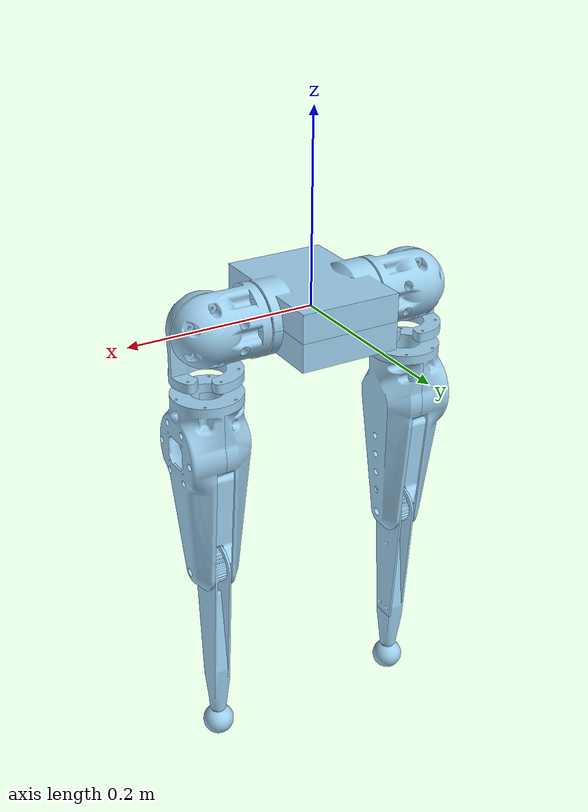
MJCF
<?xml version="1.0" ?>
<!-- Generated using onshape-to-robot -->
<!-- Onshape https://cad.onshape.com/documents/360c6fe247050cb2acb89595/w/0ec76884927e0d2c965064d4/e/8ad038c71909de84c50c460e -->
<mujoco model="robot">
  <compiler angle="radian" meshdir="assets" autolimits="true"/>
  <default>
    <default class="robot">
      <joint frictionloss="0.1" armature="0.005"/>
      <position kp="50" dampratio="1"/>
      <default class="visual">
        <geom type="mesh" contype="0" conaffinity="0" group="2"/>
      </default>
      <default class="collision">
        <geom group="3"/>
      </default>
    </default>
  </default>
  <worldbody>
    <!-- Link pelvis -->
    <body name="pelvis" pos="0 0 0" quat="1 0 0 0" childclass="robot">
      <freejoint name="root"/>
      <inertial pos="0.000216195 -0.000649295 -0.000502195" mass="0.211284" fullinertia="0.000625526 0.000430078 0.000805235 -5.48372e-11 -2.17675e-10 -3.73841e-10"/>
      <!-- Part pelvis_lower -->
      <geom type="mesh" class="visual" pos="0.000216158 -0.000649359 -0.000502235" quat="1 0 0 0" mesh="pelvis_lower" material="pelvis_lower_material"/>
      <geom type="mesh" class="collision" pos="0.000216158 -0.000649359 -0.000502235" quat="1 0 0 0" mesh="pelvis_lower" material="pelvis_lower_material"/>
      <!-- Part pelvis_upper -->
      <geom type="mesh" class="visual" pos="0.000216158 -0.000649359 -0.000502235" quat="1 0 0 0" mesh="pelvis_upper" material="pelvis_upper_material"/>
      <geom type="mesh" class="collision" pos="0.000216158 -0.000649359 -0.000502235" quat="1 0 0 0" mesh="pelvis_upper" material="pelvis_upper_material"/>
      <!-- Link l_shoulder_1 -->
      <body name="l_shoulder_1" pos="0.0637162 -0.000649359 -0.000502235" quat="0.5 -0.5 -0.5 0.5">
        <!-- Joint from pelvis to l_shoulder_1 -->
        <joint axis="0 0 1" name="l_hip_fe" type="hinge" range="-3.141592653589793 3.141592653589793"/>
        <inertial pos="0.0150409 0.000418622 -0.0361911" mass="0.1328" fullinertia="0.000134901 0.00011261 8.20386e-05 2.24108e-06 1.70356e-05 -1.62268e-06"/>
        <!-- Part shoulder -->
        <geom type="mesh" class="visual" pos="2.08926e-16 1.02229e-15 -0.002" quat="0.5 0.5 -0.5 -0.5" mesh="shoulder" material="shoulder_material"/>
        <geom type="mesh" class="collision" pos="2.08926e-16 1.02229e-15 -0.002" quat="0.5 0.5 -0.5 -0.5" mesh="shoulder" material="shoulder_material"/>
        <!-- Link l_shoulder_2 -->
        <body name="l_shoulder_2" pos="-0.002 1.35536e-15 -0.0545" quat="6.00642e-16 0.707107 -1.66533e-15 -0.707107">
          <!-- Joint from l_shoulder_1 to l_shoulder_2 -->
          <joint axis="0 0 1" name="l_hip_aa" type="hinge"/>
          <inertial pos="-0.000418622 -0.0183089 0.0150409" mass="0.1328" fullinertia="0.00011261 8.20386e-05 0.000134901 -1.62268e-06 -2.24108e-06 -1.70356e-05"/>
          <!-- Part shoulder_2 -->
          <geom type="mesh" class="visual" pos="0 -0.0525 0" quat="0 1 0 0" mesh="shoulder" material="shoulder_material"/>
          <geom type="mesh" class="collision" pos="0 -0.0525 0" quat="0 1 0 0" mesh="shoulder" material="shoulder_material"/>
          <!-- Link l_thigh -->
          <body name="l_thigh" pos="9.71445e-17 -0.0675 3.60389e-15" quat="0.707107 -0.707107 2.66454e-15 2.68036e-15">
            <!-- Joint from l_shoulder_2 to l_thigh -->
            <joint axis="0 0 1" name="l_hip_ie" type="hinge"/>
            <inertial pos="0.00177203 1.75905e-06 -0.0920004" mass="0.308571" fullinertia="0.00173378 0.0017582 0.000264562 -1.32373e-08 6.20201e-06 -2.38022e-08"/>
            <!-- Part thigh -->
            <geom type="mesh" class="visual" pos="0 -2.1684e-18 -0.01" quat="1 0 -1.11022e-16 1.7481e-16" mesh="thigh" material="thigh_material"/>
            <geom type="mesh" class="collision" pos="0 -2.1684e-18 -0.01" quat="1 0 -1.11022e-16 1.7481e-16" mesh="thigh" material="thigh_material"/>
            <!-- Part thigh_cover -->
            <geom type="mesh" class="visual" pos="-4.16334e-16 5.30392e-16 -0.1225" quat="0.5 0.5 -0.5 -0.5" mesh="thigh_cover" material="thigh_cover_material"/>
            <geom type="mesh" class="collision" pos="-4.16334e-16 5.30392e-16 -0.1225" quat="0.5 0.5 -0.5 -0.5" mesh="thigh_cover" material="thigh_cover_material"/>
            <!-- Link l_shin -->
            <body name="l_shin" pos="0.0095 3.47595e-15 -0.21" quat="0.5 -0.5 0.5 -0.5">
              <!-- Joint from l_thigh to l_shin -->
              <joint axis="0 0 1" name="l_knee" type="hinge" range="-2.7576202181510014 2.7576202181510796"/>
              <inertial pos="1.04505e-16 0.111142 -0.009472" mass="0.14309" fullinertia="0.000865132 1.70838e-05 0.000870179 4.42897e-19 9.92461e-12 2.32039e-07"/>
              <!-- Part shin_cover -->
              <geom type="mesh" class="visual" pos="-2.60209e-18 -2.77556e-16 -0.0165" quat="2.74654e-16 -1 -7.63278e-16 -1.33497e-15" mesh="shin_cover" material="shin_cover_material"/>
              <geom type="mesh" class="collision" pos="-2.60209e-18 -2.77556e-16 -0.0165" quat="2.74654e-16 -1 -7.63278e-16 -1.33497e-15" mesh="shin_cover" material="shin_cover_material"/>
              <!-- Part shin -->
              <geom type="mesh" class="visual" pos="0 5.55112e-17 0" quat="0 1 0 0" mesh="shin" material="shin_material"/>
              <geom type="mesh" class="collision" pos="0 5.55112e-17 0" quat="0 1 0 0" mesh="shin" material="shin_material"/>
              <!-- Part foot -->
              <geom type="mesh" class="visual" pos="0 0.218564 -0.0095" quat="0.5 0.5 -0.5 0.5" mesh="foot" material="foot_material"/>
              <geom type="mesh" class="collision" pos="0 0.218564 -0.0095" quat="0.5 0.5 -0.5 0.5" mesh="foot" material="foot_material"/>
              <!-- Frame l_foot -->
              <site group="3" name="l_foot" pos="0 0.218564 -0.0095" quat="0.5 0.5 -0.5 0.5"/>
            </body>
          </body>
        </body>
      </body>
      <!-- Link r_shoulder_1 -->
      <body name="r_shoulder_1" pos="-0.0632838 -0.000649359 -0.000502235" quat="0.5 -0.5 -0.5 0.5">
        <!-- Joint from pelvis to r_shoulder_1 -->
        <joint axis="0 0 1" name="r_hip_fe" type="hinge" range="-3.141592653589793 3.141592653589793"/>
        <inertial pos="0.0150409 -0.000418622 0.0361911" mass="0.1328" fullinertia="0.000134901 0.00011261 8.20386e-05 -2.24108e-06 -1.70356e-05 -1.62268e-06"/>
        <!-- Part shoulder_3 -->
        <geom type="mesh" class="visual" pos="1.19262e-18 -1.84314e-18 0.002" quat="0.5 -0.5 -0.5 0.5" mesh="shoulder" material="shoulder_material"/>
        <geom type="mesh" class="collision" pos="1.19262e-18 -1.84314e-18 0.002" quat="0.5 -0.5 -0.5 0.5" mesh="shoulder" material="shoulder_material"/>
        <!-- Link r_shoulder_2 -->
        <body name="r_shoulder_2" pos="-0.002 5.08491e-17 0.0545" quat="0.707107 4.56209e-16 0.707107 -2.47125e-15">
          <!-- Joint from r_shoulder_1 to r_shoulder_2 -->
          <joint axis="0 0 1" name="r_hip_aa" type="hinge"/>
          <inertial pos="-0.000418622 0.0183089 -0.0150409" mass="0.1328" fullinertia="0.00011261 8.20386e-05 0.000134901 1.62268e-06 2.24108e-06 -1.70356e-05"/>
          <!-- Part shoulder_4 -->
          <geom type="mesh" class="visual" pos="-4.16334e-17 0.0525 0" quat="1 0 1.45717e-16 2.34272e-16" mesh="shoulder" material="shoulder_material"/>
          <geom type="mesh" class="collision" pos="-4.16334e-17 0.0525 0" quat="1 0 1.45717e-16 2.34272e-16" mesh="shoulder" material="shoulder_material"/>
          <!-- Link r_thigh -->
          <body name="r_thigh" pos="-4.16334e-17 0.0675 -1.72822e-15" quat="1.69975e-15 1.70036e-16 -0.707107 -0.707107">
            <!-- Joint from r_shoulder_2 to r_thigh -->
            <joint axis="0 0 1" name="r_hip_ie" type="hinge"/>
            <inertial pos="0.00177203 -1.75905e-06 0.0920004" mass="0.308571" fullinertia="0.00173378 0.0017582 0.000264562 1.32373e-08 -6.20201e-06 -2.38022e-08"/>
            <!-- Part thigh_cover_2 -->
            <geom type="mesh" class="visual" pos="1.38778e-16 -6.86517e-16 0.1225" quat="0.5 -0.5 -0.5 0.5" mesh="thigh_cover" material="thigh_cover_material"/>
            <geom type="mesh" class="collision" pos="1.38778e-16 -6.86517e-16 0.1225" quat="0.5 -0.5 -0.5 0.5" mesh="thigh_cover" material="thigh_cover_material"/>
            <!-- Part thigh_2 -->
            <geom type="mesh" class="visual" pos="0 2.1684e-18 0.01" quat="0 1 0 0" mesh="thigh" material="thigh_material"/>
            <geom type="mesh" class="collision" pos="0 2.1684e-18 0.01" quat="0 1 0 0" mesh="thigh" material="thigh_material"/>
            <!-- Link r_shin -->
            <body name="r_shin" pos="0.0095 9.19403e-17 0.21" quat="0.5 -0.5 -0.5 0.5">
              <!-- Joint from r_thigh to r_shin -->
              <joint axis="0 0 1" name="r_knee" type="hinge" range="-2.7576202181510414 2.7576202181510396"/>
              <inertial pos="1.04762e-16 -0.111142 0.009472" mass="0.14309" fullinertia="0.000865132 1.70838e-05 0.000870179 -3.68249e-19 -9.92461e-12 2.32039e-07"/>
              <!-- Part shin_cover_2 -->
              <geom type="mesh" class="visual" pos="0 5.55112e-17 0.0165" quat="1 -7.48978e-17 1.38778e-16 -5.25677e-16" mesh="shin_cover" material="shin_cover_material"/>
              <geom type="mesh" class="collision" pos="0 5.55112e-17 0.0165" quat="1 -7.48978e-17 1.38778e-16 -5.25677e-16" mesh="shin_cover" material="shin_cover_material"/>
              <!-- Part foot_2 -->
              <geom type="mesh" class="visual" pos="4.33681e-19 -0.218564 0.0095" quat="0.5 -0.5 -0.5 -0.5" mesh="foot" material="foot_material"/>
              <geom type="mesh" class="collision" pos="4.33681e-19 -0.218564 0.0095" quat="0.5 -0.5 -0.5 -0.5" mesh="foot" material="foot_material"/>
              <!-- Part shin_2 -->
              <geom type="mesh" class="visual" pos="0 5.55112e-17 0" quat="1 -0 4.44089e-16 -8.67362e-19" mesh="shin" material="shin_material"/>
              <geom type="mesh" class="collision" pos="0 5.55112e-17 0" quat="1 -0 4.44089e-16 -8.67362e-19" mesh="shin" material="shin_material"/>
              <!-- Frame r_foot -->
              <site group="3" name="r_foot" pos="4.33681e-19 -0.218564 0.0095" quat="0.5 -0.5 -0.5 -0.5"/>
            </body>
          </body>
        </body>
      </body>
    </body>
  </worldbody>
  <asset>
    <mesh file="shin.stl"/>
    <mesh file="shin_cover.stl"/>
    <mesh file="shoulder.stl"/>
    <mesh file="foot.stl"/>
    <mesh file="pelvis_lower.stl"/>
    <mesh file="pelvis_upper.stl"/>
    <mesh file="thigh_cover.stl"/>
    <mesh file="thigh.stl"/>
    <material name="pelvis_lower_material" rgba="0.615686 0.811765 0.929412 1"/>
    <material name="pelvis_upper_material" rgba="0.615686 0.811765 0.929412 1"/>
    <material name="shoulder_material" rgba="0.615686 0.811765 0.929412 1"/>
    <material name="thigh_material" rgba="0.615686 0.811765 0.929412 1"/>
    <material name="thigh_cover_material" rgba="0.615686 0.811765 0.929412 1"/>
    <material name="shin_cover_material" rgba="0.615686 0.811765 0.929412 1"/>
    <material name="shin_material" rgba="0.615686 0.811765 0.929412 1"/>
    <material name="foot_material" rgba="0.615686 0.811765 0.929412 1"/>
  </asset>
  <actuator>
    <position class="robot" name="l_hip_fe" joint="l_hip_fe" inheritrange="1"/>
    <position class="robot" name="l_hip_aa" joint="l_hip_aa"/>
    <position class="robot" name="l_hip_ie" joint="l_hip_ie"/>
    <position class="robot" name="l_knee" joint="l_knee" inheritrange="1"/>
    <position class="robot" name="r_hip_fe" joint="r_hip_fe" inheritrange="1"/>
    <position class="robot" name="r_hip_aa" joint="r_hip_aa"/>
    <position class="robot" name="r_hip_ie" joint="r_hip_ie"/>
    <position class="robot" name="r_knee" joint="r_knee" inheritrange="1"/>
  </actuator>
  <equality/>
</mujoco>
